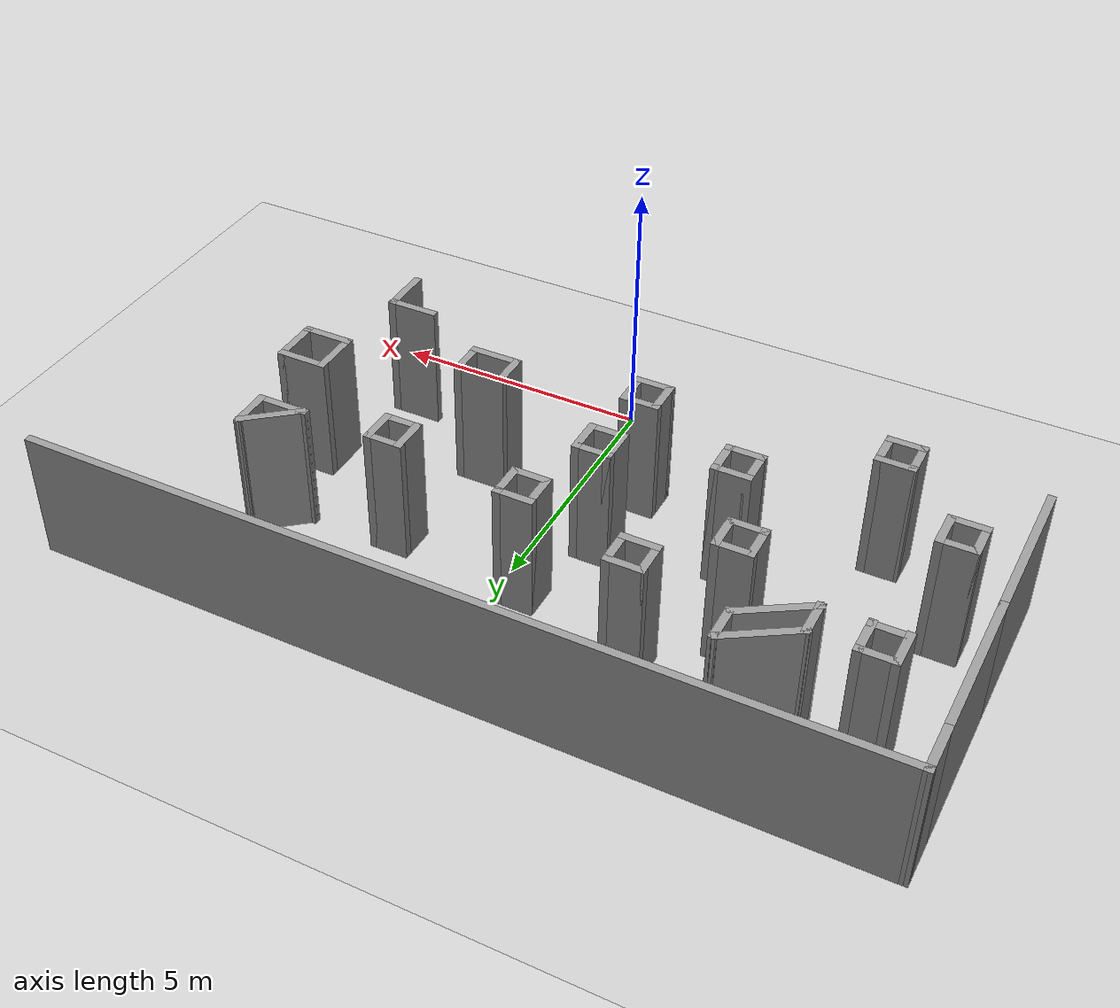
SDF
<sdf version="1.7">
 <world name="default">
  <model name="ground_plane">
   <static>1</static>
   <link name="link">
    <collision name="collision">
     <geometry><plane><normal>0 0 1</normal><size>100 100</size></plane></geometry>
     <surface>
      <contact><collide_bitmask>65535</collide_bitmask></contact>
      <friction><ode><mu>100</mu><mu2>50</mu2></ode></friction>
     </surface>
    </collision>
    <visual name="visual">
     <cast_shadows>0</cast_shadows>
     <geometry><plane><normal>0 0 1</normal><size>100 100</size></plane></geometry>
     <material>
      <script><uri>file://media/materials/scripts/gazebo.material</uri><name>Gazebo/Grey</name></script>
     </material>
    </visual>
   </link>
  </model>
  <model name="mazeworld.sdf">
   <pose>-0.284514 0.153221 0 0 -0 0</pose>
   <link name="Wall_100">
    <collision name="Wall_100_Collision">
     <geometry><box><size>0.75 0.15 2.5</size></box></geometry>
     <pose>0 0 1.25 0 -0 0</pose>
    </collision>
    <visual name="Wall_100_Visual">
     <pose>0 0 1.25 0 -0 0</pose>
     <geometry><box><size>0.75 0.15 2.5</size></box></geometry>
     <material>
      <script><uri>file://media/materials/scripts/gazebo.material</uri><name>Gazebo/Grey</name></script>
      <ambient>1 1 1 1</ambient>
     </material>
     <meta><layer>0</layer></meta>
    </visual>
    <pose>-7.00412 2.84195 0 0 -0 0</pose>
   </link>
   <link name="Wall_101">
    <collision name="Wall_101_Collision">
     <geometry><box><size>0.75 0.15 2.5</size></box></geometry>
     <pose>0 0 1.25 0 -0 0</pose>
    </collision>
    <visual name="Wall_101_Visual">
     <pose>0 0 1.25 0 -0 0</pose>
     <geometry><box><size>0.75 0.15 2.5</size></box></geometry>
     <material>
      <script><uri>file://media/materials/scripts/gazebo.material</uri><name>Gazebo/Grey</name></script>
      <ambient>1 1 1 1</ambient>
     </material>
     <meta><layer>0</layer></meta>
    </visual>
    <pose>-6.70412 3.14195 0 0 -0 1.5708</pose>
   </link>
   <link name="Wall_102">
    <collision name="Wall_102_Collision">
     <geometry><box><size>0.75 0.15 2.5</size></box></geometry>
     <pose>0 0 1.25 0 -0 0</pose>
    </collision>
    <visual name="Wall_102_Visual">
     <pose>0 0 1.25 0 -0 0</pose>
     <geometry><box><size>0.75 0.15 2.5</size></box></geometry>
     <material>
      <script><uri>file://media/materials/scripts/gazebo.material</uri><name>Gazebo/Grey</name></script>
      <ambient>1 1 1 1</ambient>
     </material>
     <meta><layer>0</layer></meta>
    </visual>
    <pose>-7.00412 3.44195 0 0 -0 3.14159</pose>
   </link>
   <link name="Wall_106">
    <collision name="Wall_106_Collision">
     <geometry><box><size>0.75 0.15 2.5</size></box></geometry>
     <pose>0 0 1.25 0 -0 0</pose>
    </collision>
    <visual name="Wall_106_Visual">
     <pose>0 0 1.25 0 -0 0</pose>
     <geometry><box><size>0.75 0.15 2.5</size></box></geometry>
     <material>
      <script><uri>file://media/materials/scripts/gazebo.material</uri><name>Gazebo/Grey</name></script>
      <ambient>1 1 1 1</ambient>
     </material>
     <meta><layer>0</layer></meta>
    </visual>
    <pose>-0.487553 5.32416 0 0 -0 -1.5708</pose>
   </link>
   <link name="Wall_107">
    <collision name="Wall_107_Collision">
     <geometry><box><size>0.75 0.15 2.5</size></box></geometry>
     <pose>0 0 1.25 0 -0 0</pose>
    </collision>
    <visual name="Wall_107_Visual">
     <pose>0 0 1.25 0 -0 0</pose>
     <geometry><box><size>0.75 0.15 2.5</size></box></geometry>
     <material>
      <script><uri>file://media/materials/scripts/gazebo.material</uri><name>Gazebo/Grey</name></script>
      <ambient>1 1 1 1</ambient>
     </material>
     <meta><layer>0</layer></meta>
    </visual>
    <pose>-0.187553 5.02416 0 0 -0 0</pose>
   </link>
   <link name="Wall_108">
    <collision name="Wall_108_Collision">
     <geometry><box><size>0.75 0.15 2.5</size></box></geometry>
     <pose>0 0 1.25 0 -0 0</pose>
    </collision>
    <visual name="Wall_108_Visual">
     <pose>0 0 1.25 0 -0 0</pose>
     <geometry><box><size>0.75 0.15 2.5</size></box></geometry>
     <material>
      <script><uri>file://media/materials/scripts/gazebo.material</uri><name>Gazebo/Grey</name></script>
      <ambient>1 1 1 1</ambient>
     </material>
     <meta><layer>0</layer></meta>
    </visual>
    <pose>0.112447 5.32416 0 0 -0 1.5708</pose>
   </link>
   <link name="Wall_109">
    <collision name="Wall_109_Collision">
     <geometry><box><size>0.75 0.15 2.5</size></box></geometry>
     <pose>0 0 1.25 0 -0 0</pose>
    </collision>
    <visual name="Wall_109_Visual">
     <pose>0 0 1.25 0 -0 0</pose>
     <geometry><box><size>0.75 0.15 2.5</size></box></geometry>
     <material>
      <script><uri>file://media/materials/scripts/gazebo.material</uri><name>Gazebo/Grey</name></script>
      <ambient>1 1 1 1</ambient>
     </material>
     <meta><layer>0</layer></meta>
    </visual>
    <pose>-0.187553 5.62416 0 0 -0 3.14159</pose>
   </link>
   <link name="Wall_115">
    <collision name="Wall_115_Collision">
     <geometry><box><size>0.75 0.15 2.5</size></box></geometry>
     <pose>0 0 1.25 0 -0 0</pose>
    </collision>
    <visual name="Wall_115_Visual">
     <pose>0 0 1.25 0 -0 0</pose>
     <geometry><box><size>0.75 0.15 2.5</size></box></geometry>
     <material>
      <script><uri>file://media/materials/scripts/gazebo.material</uri><name>Gazebo/Grey</name></script>
      <ambient>1 1 1 1</ambient>
     </material>
     <meta><layer>0</layer></meta>
    </visual>
    <pose>-3.12317 3.39304 0 0 -0 0</pose>
   </link>
   <link name="Wall_116">
    <collision name="Wall_116_Collision">
     <geometry><box><size>0.75 0.15 2.5</size></box></geometry>
     <pose>0 0 1.25 0 -0 0</pose>
    </collision>
    <visual name="Wall_116_Visual">
     <pose>0 0 1.25 0 -0 0</pose>
     <geometry><box><size>0.75 0.15 2.5</size></box></geometry>
     <material>
      <script><uri>file://media/materials/scripts/gazebo.material</uri><name>Gazebo/Grey</name></script>
      <ambient>1 1 1 1</ambient>
     </material>
     <meta><layer>0</layer></meta>
    </visual>
    <pose>-2.82317 3.09304 0 0 -0 -1.5708</pose>
   </link>
   <link name="Wall_117">
    <collision name="Wall_117_Collision">
     <geometry><box><size>0.75 0.15 2.5</size></box></geometry>
     <pose>0 0 1.25 0 -0 0</pose>
    </collision>
    <visual name="Wall_117_Visual">
     <pose>0 0 1.25 0 -0 0</pose>
     <geometry><box><size>0.75 0.15 2.5</size></box></geometry>
     <material>
      <script><uri>file://media/materials/scripts/gazebo.material</uri><name>Gazebo/Grey</name></script>
      <ambient>1 1 1 1</ambient>
     </material>
     <meta><layer>0</layer></meta>
    </visual>
    <pose>-3.12317 2.79304 0 0 -0 3.14159</pose>
   </link>
   <link name="Wall_118">
    <collision name="Wall_118_Collision">
     <geometry><box><size>0.75 0.15 2.5</size></box></geometry>
     <pose>0 0 1.25 0 -0 0</pose>
    </collision>
    <visual name="Wall_118_Visual">
     <pose>0 0 1.25 0 -0 0</pose>
     <geometry><box><size>0.75 0.15 2.5</size></box></geometry>
     <material>
      <script><uri>file://media/materials/scripts/gazebo.material</uri><name>Gazebo/Grey</name></script>
      <ambient>1 1 1 1</ambient>
     </material>
     <meta><layer>0</layer></meta>
    </visual>
    <pose>-3.42317 3.09304 0 0 -0 1.5708</pose>
   </link>
   <link name="Wall_120">
    <collision name="Wall_120_Collision">
     <geometry><box><size>0.75 0.15 2.5</size></box></geometry>
     <pose>0 0 1.25 0 -0 0</pose>
    </collision>
    <visual name="Wall_120_Visual">
     <pose>0 0 1.25 0 -0 0</pose>
     <geometry><box><size>0.75 0.15 2.5</size></box></geometry>
     <material>
      <script><uri>file://media/materials/scripts/gazebo.material</uri><name>Gazebo/Grey</name></script>
      <ambient>1 1 1 1</ambient>
     </material>
     <meta><layer>0</layer></meta>
    </visual>
    <pose>-1.0967 3.63685 0 0 -0 -1.5708</pose>
   </link>
   <link name="Wall_121">
    <collision name="Wall_121_Collision">
     <geometry><box><size>0.75 0.15 2.5</size></box></geometry>
     <pose>0 0 1.25 0 -0 0</pose>
    </collision>
    <visual name="Wall_121_Visual">
     <pose>0 0 1.25 0 -0 0</pose>
     <geometry><box><size>0.75 0.15 2.5</size></box></geometry>
     <material>
      <script><uri>file://media/materials/scripts/gazebo.material</uri><name>Gazebo/Grey</name></script>
      <ambient>1 1 1 1</ambient>
     </material>
     <meta><layer>0</layer></meta>
    </visual>
    <pose>-0.796699 3.33685 0 0 -0 0</pose>
   </link>
   <link name="Wall_122">
    <collision name="Wall_122_Collision">
     <geometry><box><size>0.75 0.15 2.5</size></box></geometry>
     <pose>0 0 1.25 0 -0 0</pose>
    </collision>
    <visual name="Wall_122_Visual">
     <pose>0 0 1.25 0 -0 0</pose>
     <geometry><box><size>0.75 0.15 2.5</size></box></geometry>
     <material>
      <script><uri>file://media/materials/scripts/gazebo.material</uri><name>Gazebo/Grey</name></script>
      <ambient>1 1 1 1</ambient>
     </material>
     <meta><layer>0</layer></meta>
    </visual>
    <pose>-0.496698 3.63685 0 0 -0 1.5708</pose>
   </link>
   <link name="Wall_123">
    <collision name="Wall_123_Collision">
     <geometry><box><size>0.75 0.15 2.5</size></box></geometry>
     <pose>0 0 1.25 0 -0 0</pose>
    </collision>
    <visual name="Wall_123_Visual">
     <pose>0 0 1.25 0 -0 0</pose>
     <geometry><box><size>0.75 0.15 2.5</size></box></geometry>
     <material>
      <script><uri>file://media/materials/scripts/gazebo.material</uri><name>Gazebo/Grey</name></script>
      <ambient>1 1 1 1</ambient>
     </material>
     <meta><layer>0</layer></meta>
    </visual>
    <pose>-0.796699 3.93685 0 0 -0 3.14159</pose>
   </link>
   <link name="Wall_125">
    <collision name="Wall_125_Collision">
     <geometry><box><size>0.75 0.15 2.5</size></box></geometry>
     <pose>0 0 1.25 0 -0 0</pose>
    </collision>
    <visual name="Wall_125_Visual">
     <pose>0 0 1.25 0 -0 0</pose>
     <geometry><box><size>0.75 0.15 2.5</size></box></geometry>
     <material>
      <script><uri>file://media/materials/scripts/gazebo.material</uri><name>Gazebo/Grey</name></script>
      <ambient>1 1 1 1</ambient>
     </material>
     <meta><layer>0</layer></meta>
    </visual>
    <pose>-5.77172 1.5986 0 0 -0 -1.5708</pose>
   </link>
   <link name="Wall_126">
    <collision name="Wall_126_Collision">
     <geometry><box><size>0.75 0.15 2.5</size></box></geometry>
     <pose>0 0 1.25 0 -0 0</pose>
    </collision>
    <visual name="Wall_126_Visual">
     <pose>0 0 1.25 0 -0 0</pose>
     <geometry><box><size>0.75 0.15 2.5</size></box></geometry>
     <material>
      <script><uri>file://media/materials/scripts/gazebo.material</uri><name>Gazebo/Grey</name></script>
      <ambient>1 1 1 1</ambient>
     </material>
     <meta><layer>0</layer></meta>
    </visual>
    <pose>-5.47172 1.2986 0 0 -0 0</pose>
   </link>
   <link name="Wall_127">
    <collision name="Wall_127_Collision">
     <geometry><box><size>0.75 0.15 2.5</size></box></geometry>
     <pose>0 0 1.25 0 -0 0</pose>
    </collision>
    <visual name="Wall_127_Visual">
     <pose>0 0 1.25 0 -0 0</pose>
     <geometry><box><size>0.75 0.15 2.5</size></box></geometry>
     <material>
      <script><uri>file://media/materials/scripts/gazebo.material</uri><name>Gazebo/Grey</name></script>
      <ambient>1 1 1 1</ambient>
     </material>
     <meta><layer>0</layer></meta>
    </visual>
    <pose>-5.17172 1.5986 0 0 -0 1.5708</pose>
   </link>
   <link name="Wall_128">
    <collision name="Wall_128_Collision">
     <geometry><box><size>0.75 0.15 2.5</size></box></geometry>
     <pose>0 0 1.25 0 -0 0</pose>
    </collision>
    <visual name="Wall_128_Visual">
     <pose>0 0 1.25 0 -0 0</pose>
     <geometry><box><size>0.75 0.15 2.5</size></box></geometry>
     <material>
      <script><uri>file://media/materials/scripts/gazebo.material</uri><name>Gazebo/Grey</name></script>
      <ambient>1 1 1 1</ambient>
     </material>
     <meta><layer>0</layer></meta>
    </visual>
    <pose>-5.47172 1.8986 0 0 -0 3.14159</pose>
   </link>
   <link name="Wall_131">
    <collision name="Wall_131_Collision">
     <geometry><box><size>1 0.15 2.5</size></box></geometry>
     <pose>0 0 1.25 0 -0 0</pose>
    </collision>
    <visual name="Wall_131_Visual">
     <pose>0 0 1.25 0 -0 0</pose>
     <geometry><box><size>1 0.15 2.5</size></box></geometry>
     <material>
      <script><uri>file://media/materials/scripts/gazebo.material</uri><name>Gazebo/Grey</name></script>
      <ambient>1 1 1 1</ambient>
     </material>
     <meta><layer>0</layer></meta>
    </visual>
    <pose>-8.01051 7.72393 0 0 -0 1.5708</pose>
   </link>
   <link name="Wall_132">
    <collision name="Wall_132_Collision">
     <geometry><box><size>16.0032 0.15 2.5</size></box></geometry>
     <pose>0 0 1.25 0 -0 0</pose>
    </collision>
    <visual name="Wall_132_Visual">
     <pose>0 0 1.25 0 -0 0</pose>
     <geometry><box><size>16.0032 0.15 2.5</size></box></geometry>
     <material>
      <script><uri>file://media/materials/scripts/gazebo.material</uri><name>Gazebo/Grey</name></script>
      <ambient>1 1 1 1</ambient>
     </material>
     <meta><layer>0</layer></meta>
    </visual>
    <pose>-0.083946 8.13102 0 0 -0 -0.00226</pose>
   </link>
   <link name="Wall_135">
    <collision name="Wall_135_Collision">
     <geometry><box><size>0.75 0.15 2.5</size></box></geometry>
     <pose>0 0 1.25 0 -0 0</pose>
    </collision>
    <visual name="Wall_135_Visual">
     <pose>0 0 1.25 0 -0 0</pose>
     <geometry><box><size>0.75 0.15 2.5</size></box></geometry>
     <material>
      <script><uri>file://media/materials/scripts/gazebo.material</uri><name>Gazebo/Grey</name></script>
      <ambient>1 1 1 1</ambient>
     </material>
     <meta><layer>0</layer></meta>
    </visual>
    <pose>2.18363 5.04113 0 0 -0 -1.5708</pose>
   </link>
   <link name="Wall_136">
    <collision name="Wall_136_Collision">
     <geometry><box><size>0.75 0.15 2.5</size></box></geometry>
     <pose>0 0 1.25 0 -0 0</pose>
    </collision>
    <visual name="Wall_136_Visual">
     <pose>0 0 1.25 0 -0 0</pose>
     <geometry><box><size>0.75 0.15 2.5</size></box></geometry>
     <material>
      <script><uri>file://media/materials/scripts/gazebo.material</uri><name>Gazebo/Grey</name></script>
      <ambient>1 1 1 1</ambient>
     </material>
     <meta><layer>0</layer></meta>
    </visual>
    <pose>2.48363 4.74113 0 0 -0 0</pose>
   </link>
   <link name="Wall_137">
    <collision name="Wall_137_Collision">
     <geometry><box><size>0.75 0.15 2.5</size></box></geometry>
     <pose>0 0 1.25 0 -0 0</pose>
    </collision>
    <visual name="Wall_137_Visual">
     <pose>0 0 1.25 0 -0 0</pose>
     <geometry><box><size>0.75 0.15 2.5</size></box></geometry>
     <material>
      <script><uri>file://media/materials/scripts/gazebo.material</uri><name>Gazebo/Grey</name></script>
      <ambient>1 1 1 1</ambient>
     </material>
     <meta><layer>0</layer></meta>
    </visual>
    <pose>2.78363 5.04113 0 0 -0 1.5708</pose>
   </link>
   <link name="Wall_138">
    <collision name="Wall_138_Collision">
     <geometry><box><size>0.75 0.15 2.5</size></box></geometry>
     <pose>0 0 1.25 0 -0 0</pose>
    </collision>
    <visual name="Wall_138_Visual">
     <pose>0 0 1.25 0 -0 0</pose>
     <geometry><box><size>0.75 0.15 2.5</size></box></geometry>
     <material>
      <script><uri>file://media/materials/scripts/gazebo.material</uri><name>Gazebo/Grey</name></script>
      <ambient>1 1 1 1</ambient>
     </material>
     <meta><layer>0</layer></meta>
    </visual>
    <pose>2.48363 5.34113 0 0 -0 3.14159</pose>
   </link>
   <link name="Wall_140">
    <collision name="Wall_140_Collision">
     <geometry><box><size>1.23478 0.15 2.5</size></box></geometry>
     <pose>0 0 1.25 0 -0 0</pose>
    </collision>
    <visual name="Wall_140_Visual">
     <pose>0 0 1.25 0 -0 0</pose>
     <geometry><box><size>1.23478 0.15 2.5</size></box></geometry>
     <material>
      <script><uri>file://media/materials/scripts/gazebo.material</uri><name>Gazebo/Grey</name></script>
      <ambient>1 1 1 1</ambient>
     </material>
     <meta><layer>0</layer></meta>
    </visual>
    <pose>4.59414 5.64718 0 0 -0 -2.45294</pose>
   </link>
   <link name="Wall_141">
    <collision name="Wall_141_Collision">
     <geometry><box><size>1 0.15 2.5</size></box></geometry>
     <pose>0 0 1.25 0 -0 0</pose>
    </collision>
    <visual name="Wall_141_Visual">
     <pose>0 0 1.25 0 -0 0</pose>
     <geometry><box><size>1 0.15 2.5</size></box></geometry>
     <material>
      <script><uri>file://media/materials/scripts/gazebo.material</uri><name>Gazebo/Grey</name></script>
      <ambient>1 1 1 1</ambient>
     </material>
     <meta><layer>0</layer></meta>
    </visual>
    <pose>4.57206 5.30249 0 0 -0 0</pose>
   </link>
   <link name="Wall_142">
    <collision name="Wall_142_Collision">
     <geometry><box><size>0.839555 0.15 2.5</size></box></geometry>
     <pose>0 0 1.25 0 -0 0</pose>
    </collision>
    <visual name="Wall_142_Visual">
     <pose>0 0 1.25 0 -0 0</pose>
     <geometry><box><size>0.839555 0.15 2.5</size></box></geometry>
     <material>
      <script><uri>file://media/materials/scripts/gazebo.material</uri><name>Gazebo/Grey</name></script>
      <ambient>1 1 1 1</ambient>
     </material>
     <meta><layer>0</layer></meta>
    </visual>
    <pose>5.01914 5.64718 0 0 -0 1.58883</pose>
   </link>
   <link name="Wall_144">
    <collision name="Wall_144_Collision">
     <geometry><box><size>0.75 0.15 2.5</size></box></geometry>
     <pose>0 0 1.25 0 -0 0</pose>
    </collision>
    <visual name="Wall_144_Visual">
     <pose>0 0 1.25 0 -0 0</pose>
     <geometry><box><size>0.75 0.15 2.5</size></box></geometry>
     <material>
      <script><uri>file://media/materials/scripts/gazebo.material</uri><name>Gazebo/Grey</name></script>
      <ambient>1 1 1 1</ambient>
     </material>
     <meta><layer>0</layer></meta>
    </visual>
    <pose>1.56119 2.55135 0 0 -0 -1.5708</pose>
   </link>
   <link name="Wall_145">
    <collision name="Wall_145_Collision">
     <geometry><box><size>1 0.15 2.5</size></box></geometry>
     <pose>0 0 1.25 0 -0 0</pose>
    </collision>
    <visual name="Wall_145_Visual">
     <pose>0 0 1.25 0 -0 0</pose>
     <geometry><box><size>1 0.15 2.5</size></box></geometry>
     <material>
      <script><uri>file://media/materials/scripts/gazebo.material</uri><name>Gazebo/Grey</name></script>
      <ambient>1 1 1 1</ambient>
     </material>
     <meta><layer>0</layer></meta>
    </visual>
    <pose>1.98619 2.25135 0 0 -0 0</pose>
   </link>
   <link name="Wall_146">
    <collision name="Wall_146_Collision">
     <geometry><box><size>0.75 0.15 2.5</size></box></geometry>
     <pose>0 0 1.25 0 -0 0</pose>
    </collision>
    <visual name="Wall_146_Visual">
     <pose>0 0 1.25 0 -0 0</pose>
     <geometry><box><size>0.75 0.15 2.5</size></box></geometry>
     <material>
      <script><uri>file://media/materials/scripts/gazebo.material</uri><name>Gazebo/Grey</name></script>
      <ambient>1 1 1 1</ambient>
     </material>
     <meta><layer>0</layer></meta>
    </visual>
    <pose>2.41119 2.55135 0 0 -0 1.5708</pose>
   </link>
   <link name="Wall_147">
    <collision name="Wall_147_Collision">
     <geometry><box><size>1 0.15 2.5</size></box></geometry>
     <pose>0 0 1.25 0 -0 0</pose>
    </collision>
    <visual name="Wall_147_Visual">
     <pose>0 0 1.25 0 -0 0</pose>
     <geometry><box><size>1 0.15 2.5</size></box></geometry>
     <material>
      <script><uri>file://media/materials/scripts/gazebo.material</uri><name>Gazebo/Grey</name></script>
      <ambient>1 1 1 1</ambient>
     </material>
     <meta><layer>0</layer></meta>
    </visual>
    <pose>1.98619 2.85135 0 0 -0 3.14159</pose>
   </link>
   <link name="Wall_149">
    <collision name="Wall_149_Collision">
     <geometry><box><size>0.75 0.15 2.5</size></box></geometry>
     <pose>0 0 1.25 0 -0 0</pose>
    </collision>
    <visual name="Wall_149_Visual">
     <pose>0 0 1.25 0 -0 0</pose>
     <geometry><box><size>0.75 0.15 2.5</size></box></geometry>
     <material>
      <script><uri>file://media/materials/scripts/gazebo.material</uri><name>Gazebo/Grey</name></script>
      <ambient>1 1 1 1</ambient>
     </material>
     <meta><layer>0</layer></meta>
    </visual>
    <pose>-1.23981 2.01378 0 0 -0 -1.5708</pose>
   </link>
   <link name="Wall_150">
    <collision name="Wall_150_Collision">
     <geometry><box><size>0.75 0.15 2.5</size></box></geometry>
     <pose>0 0 1.25 0 -0 0</pose>
    </collision>
    <visual name="Wall_150_Visual">
     <pose>0 0 1.25 0 -0 0</pose>
     <geometry><box><size>0.75 0.15 2.5</size></box></geometry>
     <material>
      <script><uri>file://media/materials/scripts/gazebo.material</uri><name>Gazebo/Grey</name></script>
      <ambient>1 1 1 1</ambient>
     </material>
     <meta><layer>0</layer></meta>
    </visual>
    <pose>-0.939811 1.71378 0 0 -0 0</pose>
   </link>
   <link name="Wall_151">
    <collision name="Wall_151_Collision">
     <geometry><box><size>0.75 0.15 2.5</size></box></geometry>
     <pose>0 0 1.25 0 -0 0</pose>
    </collision>
    <visual name="Wall_151_Visual">
     <pose>0 0 1.25 0 -0 0</pose>
     <geometry><box><size>0.75 0.15 2.5</size></box></geometry>
     <material>
      <script><uri>file://media/materials/scripts/gazebo.material</uri><name>Gazebo/Grey</name></script>
      <ambient>1 1 1 1</ambient>
     </material>
     <meta><layer>0</layer></meta>
    </visual>
    <pose>-0.639811 2.01378 0 0 -0 1.5708</pose>
   </link>
   <link name="Wall_152">
    <collision name="Wall_152_Collision">
     <geometry><box><size>0.75 0.15 2.5</size></box></geometry>
     <pose>0 0 1.25 0 -0 0</pose>
    </collision>
    <visual name="Wall_152_Visual">
     <pose>0 0 1.25 0 -0 0</pose>
     <geometry><box><size>0.75 0.15 2.5</size></box></geometry>
     <material>
      <script><uri>file://media/materials/scripts/gazebo.material</uri><name>Gazebo/Grey</name></script>
      <ambient>1 1 1 1</ambient>
     </material>
     <meta><layer>0</layer></meta>
    </visual>
    <pose>-0.939811 2.31379 0 0 -0 3.14159</pose>
   </link>
   <link name="Wall_179">
    <collision name="Wall_179_Collision">
     <geometry><box><size>1 0.15 2.5</size></box></geometry>
     <pose>0 0 1.25 0 -0 0</pose>
    </collision>
    <visual name="Wall_179_Visual">
     <pose>0 0 1.25 0 -0 0</pose>
     <geometry><box><size>1 0.15 2.5</size></box></geometry>
     <material>
      <script><uri>file://media/materials/scripts/gazebo.material</uri><name>Gazebo/Grey</name></script>
      <ambient>1 1 1 1</ambient>
     </material>
     <meta><layer>0</layer></meta>
    </visual>
    <pose>4.56145 1.15317 0 0 -0 1.5708</pose>
   </link>
   <link name="Wall_180">
    <collision name="Wall_180_Collision">
     <geometry><box><size>1 0.15 2.5</size></box></geometry>
     <pose>0 0 1.25 0 -0 0</pose>
    </collision>
    <visual name="Wall_180_Visual">
     <pose>0 0 1.25 0 -0 0</pose>
     <geometry><box><size>1 0.15 2.5</size></box></geometry>
     <material>
      <script><uri>file://media/materials/scripts/gazebo.material</uri><name>Gazebo/Grey</name></script>
      <ambient>1 1 1 1</ambient>
     </material>
     <meta><layer>0</layer></meta>
    </visual>
    <pose>4.13645 1.57817 0 0 -0 3.14159</pose>
   </link>
   <link name="Wall_199">
    <collision name="Wall_199_Collision">
     <geometry><box><size>1 0.15 2.5</size></box></geometry>
     <pose>0 0 1.25 0 -0 0</pose>
    </collision>
    <visual name="Wall_199_Visual">
     <pose>0 0 1.25 0 -0 0</pose>
     <geometry><box><size>1 0.15 2.5</size></box></geometry>
     <material>
      <script><uri>file://media/materials/scripts/gazebo.material</uri><name>Gazebo/Grey</name></script>
      <ambient>1 1 1 1</ambient>
     </material>
     <meta><layer>0</layer></meta>
    </visual>
    <pose>4.62757 3.53703 0 0 -0 -1.5708</pose>
   </link>
   <link name="Wall_200">
    <collision name="Wall_200_Collision">
     <geometry><box><size>1 0.15 2.5</size></box></geometry>
     <pose>0 0 1.25 0 -0 0</pose>
    </collision>
    <visual name="Wall_200_Visual">
     <pose>0 0 1.25 0 -0 0</pose>
     <geometry><box><size>1 0.15 2.5</size></box></geometry>
     <material>
      <script><uri>file://media/materials/scripts/gazebo.material</uri><name>Gazebo/Grey</name></script>
      <ambient>1 1 1 1</ambient>
     </material>
     <meta><layer>0</layer></meta>
    </visual>
    <pose>5.05257 3.11203 0 0 -0 0</pose>
   </link>
   <link name="Wall_201">
    <collision name="Wall_201_Collision">
     <geometry><box><size>1 0.15 2.5</size></box></geometry>
     <pose>0 0 1.25 0 -0 0</pose>
    </collision>
    <visual name="Wall_201_Visual">
     <pose>0 0 1.25 0 -0 0</pose>
     <geometry><box><size>1 0.15 2.5</size></box></geometry>
     <material>
      <script><uri>file://media/materials/scripts/gazebo.material</uri><name>Gazebo/Grey</name></script>
      <ambient>1 1 1 1</ambient>
     </material>
     <meta><layer>0</layer></meta>
    </visual>
    <pose>5.47757 3.53703 0 0 -0 1.5708</pose>
   </link>
   <link name="Wall_202">
    <collision name="Wall_202_Collision">
     <geometry><box><size>1 0.15 2.5</size></box></geometry>
     <pose>0 0 1.25 0 -0 0</pose>
    </collision>
    <visual name="Wall_202_Visual">
     <pose>0 0 1.25 0 -0 0</pose>
     <geometry><box><size>1 0.15 2.5</size></box></geometry>
     <material>
      <script><uri>file://media/materials/scripts/gazebo.material</uri><name>Gazebo/Grey</name></script>
      <ambient>1 1 1 1</ambient>
     </material>
     <meta><layer>0</layer></meta>
    </visual>
    <pose>5.05257 3.96203 0 0 -0 3.14159</pose>
   </link>
   <link name="Wall_51">
    <collision name="Wall_51_Collision">
     <geometry><box><size>3 0.15 2.5</size></box></geometry>
     <pose>0 0 1.25 0 -0 0</pose>
    </collision>
    <visual name="Wall_51_Visual">
     <pose>0 0 1.25 0 -0 0</pose>
     <geometry><box><size>3 0.15 2.5</size></box></geometry>
     <material>
      <script><uri>file://media/materials/scripts/gazebo.material</uri><name>Gazebo/Grey</name></script>
      <ambient>1 1 1 1</ambient>
     </material>
     <meta><layer>0</layer></meta>
    </visual>
    <pose>-8.01051 3.02393 0 0 -0 1.5708</pose>
   </link>
   <link name="Wall_52">
    <collision name="Wall_52_Collision">
     <geometry><box><size>3 0.15 2.5</size></box></geometry>
     <pose>0 0 1.25 0 -0 0</pose>
    </collision>
    <visual name="Wall_52_Visual">
     <pose>0 0 1.25 0 -0 0</pose>
     <geometry><box><size>3 0.15 2.5</size></box></geometry>
     <material>
      <script><uri>file://media/materials/scripts/gazebo.material</uri><name>Gazebo/Grey</name></script>
      <ambient>1 1 1 1</ambient>
     </material>
     <meta><layer>0</layer></meta>
    </visual>
    <pose>-8.01051 5.87393 0 0 -0 1.5708</pose>
   </link>
   <link name="Wall_79">
    <collision name="Wall_79_Collision">
     <geometry><box><size>0.778293 0.15 2.5</size></box></geometry>
     <pose>0 0 1.25 0 -0 0</pose>
    </collision>
    <visual name="Wall_79_Visual">
     <pose>0 0 1.25 0 -0 0</pose>
     <geometry><box><size>0.778293 0.15 2.5</size></box></geometry>
     <material>
      <script><uri>file://media/materials/scripts/gazebo.material</uri><name>Gazebo/Grey</name></script>
      <ambient>1 1 1 1</ambient>
     </material>
     <meta><layer>0</layer></meta>
    </visual>
    <pose>-6.96849 6.06287 0 0 -0 -1.5708</pose>
   </link>
   <link name="Wall_80">
    <collision name="Wall_80_Collision">
     <geometry><box><size>0.75 0.15 2.5</size></box></geometry>
     <pose>0 0 1.25 0 -0 0</pose>
    </collision>
    <visual name="Wall_80_Visual">
     <pose>0 0 1.25 0 -0 0</pose>
     <geometry><box><size>0.75 0.15 2.5</size></box></geometry>
     <material>
      <script><uri>file://media/materials/scripts/gazebo.material</uri><name>Gazebo/Grey</name></script>
      <ambient>1 1 1 1</ambient>
     </material>
     <meta><layer>0</layer></meta>
    </visual>
    <pose>-6.66848 5.77701 0 0 -0 0</pose>
   </link>
   <link name="Wall_81">
    <collision name="Wall_81_Collision">
     <geometry><box><size>0.778293 0.15 2.5</size></box></geometry>
     <pose>0 0 1.25 0 -0 0</pose>
    </collision>
    <visual name="Wall_81_Visual">
     <pose>0 0 1.25 0 -0 0</pose>
     <geometry><box><size>0.778293 0.15 2.5</size></box></geometry>
     <material>
      <script><uri>file://media/materials/scripts/gazebo.material</uri><name>Gazebo/Grey</name></script>
      <ambient>1 1 1 1</ambient>
     </material>
     <meta><layer>0</layer></meta>
    </visual>
    <pose>-6.36848 6.06287 0 0 -0 1.5708</pose>
   </link>
   <link name="Wall_82">
    <collision name="Wall_82_Collision">
     <geometry><box><size>0.75 0.15 2.5</size></box></geometry>
     <pose>0 0 1.25 0 -0 0</pose>
    </collision>
    <visual name="Wall_82_Visual">
     <pose>0 0 1.25 0 -0 0</pose>
     <geometry><box><size>0.75 0.15 2.5</size></box></geometry>
     <material>
      <script><uri>file://media/materials/scripts/gazebo.material</uri><name>Gazebo/Grey</name></script>
      <ambient>1 1 1 1</ambient>
     </material>
     <meta><layer>0</layer></meta>
    </visual>
    <pose>-6.66848 6.37701 0 0 -0 3.14159</pose>
   </link>
   <link name="Wall_84">
    <collision name="Wall_84_Collision">
     <geometry><box><size>0.75 0.15 2.5</size></box></geometry>
     <pose>0 0 1.25 0 -0 0</pose>
    </collision>
    <visual name="Wall_84_Visual">
     <pose>0 0 1.25 0 -0 0</pose>
     <geometry><box><size>0.75 0.15 2.5</size></box></geometry>
     <material>
      <script><uri>file://media/materials/scripts/gazebo.material</uri><name>Gazebo/Grey</name></script>
      <ambient>1 1 1 1</ambient>
     </material>
     <meta><layer>0</layer></meta>
    </visual>
    <pose>-5.54936 6.06655 0 0 -0 -1.5708</pose>
   </link>
   <link name="Wall_85">
    <collision name="Wall_85_Collision">
     <geometry><box><size>1.52511 0.15 2.5</size></box></geometry>
     <pose>0 0 1.25 0 -0 0</pose>
    </collision>
    <visual name="Wall_85_Visual">
     <pose>0 0 1.25 0 -0 0</pose>
     <geometry><box><size>1.52511 0.15 2.5</size></box></geometry>
     <material>
      <script><uri>file://media/materials/scripts/gazebo.material</uri><name>Gazebo/Grey</name></script>
      <ambient>1 1 1 1</ambient>
     </material>
     <meta><layer>0</layer></meta>
    </visual>
    <pose>-4.97073 6.13793 0 0 -0 0.570605</pose>
   </link>
   <link name="Wall_86">
    <collision name="Wall_86_Collision">
     <geometry><box><size>0.75 0.15 2.5</size></box></geometry>
     <pose>0 0 1.25 0 -0 0</pose>
    </collision>
    <visual name="Wall_86_Visual">
     <pose>0 0 1.25 0 -0 0</pose>
     <geometry><box><size>0.75 0.15 2.5</size></box></geometry>
     <material>
      <script><uri>file://media/materials/scripts/gazebo.material</uri><name>Gazebo/Grey</name></script>
      <ambient>1 1 1 1</ambient>
     </material>
     <meta><layer>0</layer></meta>
    </visual>
    <pose>-4.36381 6.80931 0 0 -0 1.5708</pose>
   </link>
   <link name="Wall_87">
    <collision name="Wall_87_Collision">
     <geometry><box><size>1.52511 0.15 2.5</size></box></geometry>
     <pose>0 0 1.25 0 -0 0</pose>
    </collision>
    <visual name="Wall_87_Visual">
     <pose>0 0 1.25 0 -0 0</pose>
     <geometry><box><size>1.52511 0.15 2.5</size></box></geometry>
     <material>
      <script><uri>file://media/materials/scripts/gazebo.material</uri><name>Gazebo/Grey</name></script>
      <ambient>1 1 1 1</ambient>
     </material>
     <meta><layer>0</layer></meta>
    </visual>
    <pose>-4.97073 6.73793 0 0 -0 -2.57099</pose>
   </link>
   <link name="Wall_89">
    <collision name="Wall_89_Collision">
     <geometry><box><size>0.75 0.15 2.5</size></box></geometry>
     <pose>0 0 1.25 0 -0 0</pose>
    </collision>
    <visual name="Wall_89_Visual">
     <pose>0 0 1.25 0 -0 0</pose>
     <geometry><box><size>0.75 0.15 2.5</size></box></geometry>
     <material>
      <script><uri>file://media/materials/scripts/gazebo.material</uri><name>Gazebo/Grey</name></script>
      <ambient>1 1 1 1</ambient>
     </material>
     <meta><layer>0</layer></meta>
    </visual>
    <pose>-4.17705 4.85172 0 0 -0 -1.5708</pose>
   </link>
   <link name="Wall_90">
    <collision name="Wall_90_Collision">
     <geometry><box><size>0.75 0.15 2.5</size></box></geometry>
     <pose>0 0 1.25 0 -0 0</pose>
    </collision>
    <visual name="Wall_90_Visual">
     <pose>0 0 1.25 0 -0 0</pose>
     <geometry><box><size>0.75 0.15 2.5</size></box></geometry>
     <material>
      <script><uri>file://media/materials/scripts/gazebo.material</uri><name>Gazebo/Grey</name></script>
      <ambient>1 1 1 1</ambient>
     </material>
     <meta><layer>0</layer></meta>
    </visual>
    <pose>-3.87705 4.55172 0 0 -0 0</pose>
   </link>
   <link name="Wall_91">
    <collision name="Wall_91_Collision">
     <geometry><box><size>0.75 0.15 2.5</size></box></geometry>
     <pose>0 0 1.25 0 -0 0</pose>
    </collision>
    <visual name="Wall_91_Visual">
     <pose>0 0 1.25 0 -0 0</pose>
     <geometry><box><size>0.75 0.15 2.5</size></box></geometry>
     <material>
      <script><uri>file://media/materials/scripts/gazebo.material</uri><name>Gazebo/Grey</name></script>
      <ambient>1 1 1 1</ambient>
     </material>
     <meta><layer>0</layer></meta>
    </visual>
    <pose>-3.57705 4.85172 0 0 -0 1.5708</pose>
   </link>
   <link name="Wall_92">
    <collision name="Wall_92_Collision">
     <geometry><box><size>0.75 0.15 2.5</size></box></geometry>
     <pose>0 0 1.25 0 -0 0</pose>
    </collision>
    <visual name="Wall_92_Visual">
     <pose>0 0 1.25 0 -0 0</pose>
     <geometry><box><size>0.75 0.15 2.5</size></box></geometry>
     <material>
      <script><uri>file://media/materials/scripts/gazebo.material</uri><name>Gazebo/Grey</name></script>
      <ambient>1 1 1 1</ambient>
     </material>
     <meta><layer>0</layer></meta>
    </visual>
    <pose>-3.87705 5.15172 0 0 -0 3.14159</pose>
   </link>
   <link name="Wall_94">
    <collision name="Wall_94_Collision">
     <geometry><box><size>0.75 0.15 2.5</size></box></geometry>
     <pose>0 0 1.25 0 -0 0</pose>
    </collision>
    <visual name="Wall_94_Visual">
     <pose>0 0 1.25 0 -0 0</pose>
     <geometry><box><size>0.75 0.15 2.5</size></box></geometry>
     <material>
      <script><uri>file://media/materials/scripts/gazebo.material</uri><name>Gazebo/Grey</name></script>
      <ambient>1 1 1 1</ambient>
     </material>
     <meta><layer>0</layer></meta>
    </visual>
    <pose>-2.80474 5.99906 0 0 -0 -1.5708</pose>
   </link>
   <link name="Wall_95">
    <collision name="Wall_95_Collision">
     <geometry><box><size>0.75 0.15 2.5</size></box></geometry>
     <pose>0 0 1.25 0 -0 0</pose>
    </collision>
    <visual name="Wall_95_Visual">
     <pose>0 0 1.25 0 -0 0</pose>
     <geometry><box><size>0.75 0.15 2.5</size></box></geometry>
     <material>
      <script><uri>file://media/materials/scripts/gazebo.material</uri><name>Gazebo/Grey</name></script>
      <ambient>1 1 1 1</ambient>
     </material>
     <meta><layer>0</layer></meta>
    </visual>
    <pose>-2.50474 5.69906 0 0 -0 0</pose>
   </link>
   <link name="Wall_96">
    <collision name="Wall_96_Collision">
     <geometry><box><size>0.75 0.15 2.5</size></box></geometry>
     <pose>0 0 1.25 0 -0 0</pose>
    </collision>
    <visual name="Wall_96_Visual">
     <pose>0 0 1.25 0 -0 0</pose>
     <geometry><box><size>0.75 0.15 2.5</size></box></geometry>
     <material>
      <script><uri>file://media/materials/scripts/gazebo.material</uri><name>Gazebo/Grey</name></script>
      <ambient>1 1 1 1</ambient>
     </material>
     <meta><layer>0</layer></meta>
    </visual>
    <pose>-2.20474 5.99906 0 0 -0 1.5708</pose>
   </link>
   <link name="Wall_97">
    <collision name="Wall_97_Collision">
     <geometry><box><size>0.75 0.15 2.5</size></box></geometry>
     <pose>0 0 1.25 0 -0 0</pose>
    </collision>
    <visual name="Wall_97_Visual">
     <pose>0 0 1.25 0 -0 0</pose>
     <geometry><box><size>0.75 0.15 2.5</size></box></geometry>
     <material>
      <script><uri>file://media/materials/scripts/gazebo.material</uri><name>Gazebo/Grey</name></script>
      <ambient>1 1 1 1</ambient>
     </material>
     <meta><layer>0</layer></meta>
    </visual>
    <pose>-2.50474 6.29906 0 0 -0 3.14159</pose>
   </link>
   <link name="Wall_99">
    <collision name="Wall_99_Collision">
     <geometry><box><size>0.75 0.15 2.5</size></box></geometry>
     <pose>0 0 1.25 0 -0 0</pose>
    </collision>
    <visual name="Wall_99_Visual">
     <pose>0 0 1.25 0 -0 0</pose>
     <geometry><box><size>0.75 0.15 2.5</size></box></geometry>
     <material>
      <script><uri>file://media/materials/scripts/gazebo.material</uri><name>Gazebo/Grey</name></script>
      <ambient>1 1 1 1</ambient>
     </material>
     <meta><layer>0</layer></meta>
    </visual>
    <pose>-7.30412 3.14195 0 0 -0 -1.5708</pose>
   </link>
   <static>1</static>
  </model>
 </world>
</sdf>
